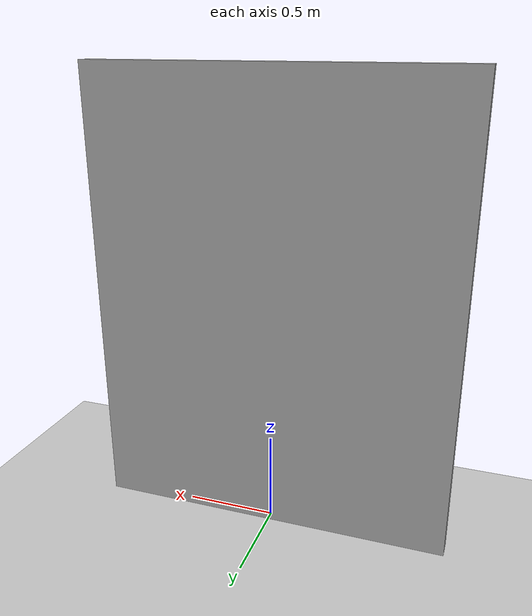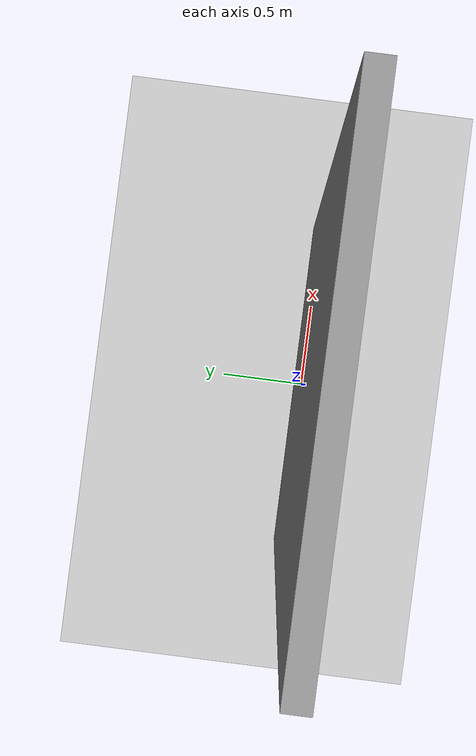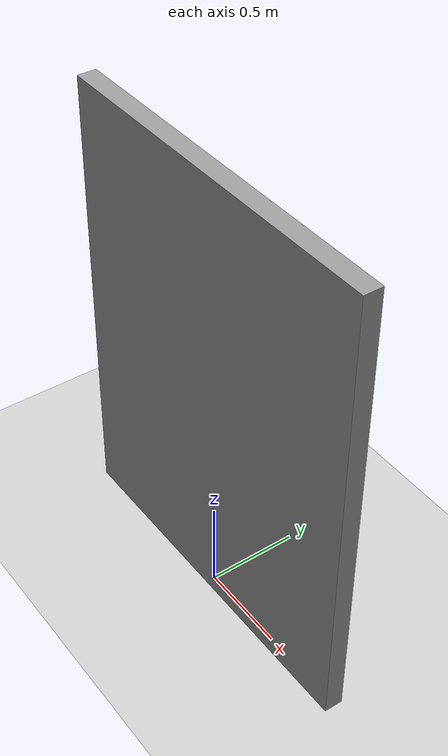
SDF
<sdf version="1.6">
 <world name="default">
  <light name="sun" type="directional">
   <pose>0 0 10 0 -0 0</pose>
   <diffuse>0.8 0.8 0.8 1</diffuse>
   <specular>0.2 0.2 0.2 1</specular>
   <attenuation>
    <range>1000</range>
    <constant>0.9</constant>
    <linear>0.01</linear>
    <quadratic>0.001</quadratic>
   </attenuation>
   <direction>-0.5 0.1 -0.9</direction>
  </light>
  <model name="ground_plane">
   <static>1</static>
   <link name="link">
    <collision name="collision">
     <geometry><plane><normal>0 0 1</normal><size>100 100</size></plane></geometry>
     <surface>
      <contact><collide_bitmask>65535</collide_bitmask></contact>
      <friction><ode><mu>100</mu><mu2>50</mu2></ode></friction>
     </surface>
    </collision>
    <visual name="visual">
     <cast_shadows>0</cast_shadows>
     <geometry><plane><normal>0 0 1</normal><size>100 100</size></plane></geometry>
     <material>
      <script><uri>file://media/materials/scripts/gazebo.material</uri><name>Gazebo/Grey</name></script>
     </material>
    </visual>
   </link>
  </model>
  <gravity>0 0 -9.8</gravity>
  <magnetic_field>6e-06 2.3e-05 -4.2e-05</magnetic_field>
  <atmosphere type="adiabatic"/>
  <physics name="default_physics" default="0" type="ode">
   <max_step_size>0.001</max_step_size>
   <real_time_factor>1</real_time_factor>
   <real_time_update_rate>1000</real_time_update_rate>
  </physics>
  <scene><ambient>0.4 0.4 0.4 1</ambient><background>0.7 0.7 0.7 1</background><shadows>1</shadows></scene>
  <spherical_coordinates>
   <surface_model>EARTH_WGS84</surface_model>
   <latitude_deg>0</latitude_deg>
   <longitude_deg>0</longitude_deg>
   <elevation>0</elevation>
   <heading_deg>0</heading_deg>
  </spherical_coordinates>
  <model name="wall_0">
   <link name="Wall_0">
    <collision name="Wall_0_Collision">
     <geometry><box><size>2 0.1 2.5</size></box></geometry>
     <pose>0 0 1.25 0 -0 0</pose>
    </collision>
    <visual name="Wall_0_Visual">
     <pose>0 0 1.25 0 -0 0</pose>
     <geometry><box><size>2 0.1 2.5</size></box></geometry>
     <material>
      <script><uri>file://media/materials/scripts/gazebo.material</uri><name>Gazebo/Grey</name></script>
      <ambient>1 1 1 1</ambient>
     </material>
     <meta><layer>0</layer></meta>
    </visual>
   </link>
   <static>1</static>
  </model>
  <model name="marker">
   <link name="marker">
    <collision name="marker_Collision">
     <geometry><box><size>0.1 0.005 0.1</size></box></geometry>
     <pose>0 0 0.05 0 -0 0</pose>
    </collision>
    <visual name="marker_Visual">
     <pose>0 0 0.05 0 -0 0</pose>
     <geometry><box><size>0.1 0.005 0.1</size></box></geometry>
     <material>
      <script><uri>file://media/materials/scripts/aruco.material</uri><name>Gazebo/aruco-36</name></script>
      <ambient>1 1 1 1</ambient>
     </material>
     <meta><layer>0</layer></meta>
    </visual>
   </link>
   <static>1</static>
  </model>
 </world>
</sdf>
